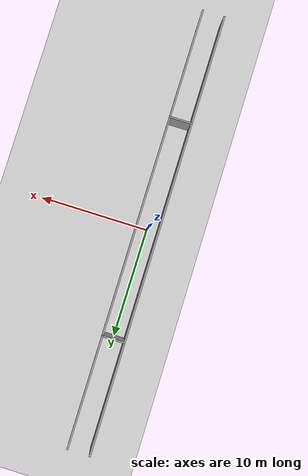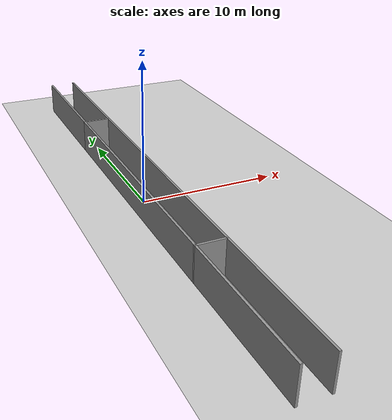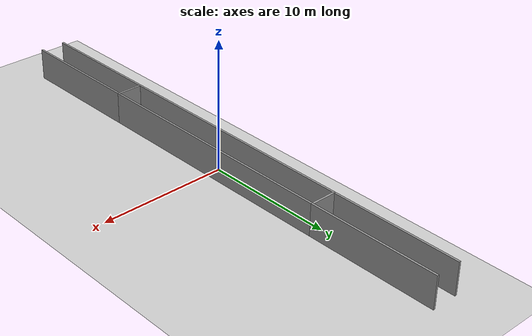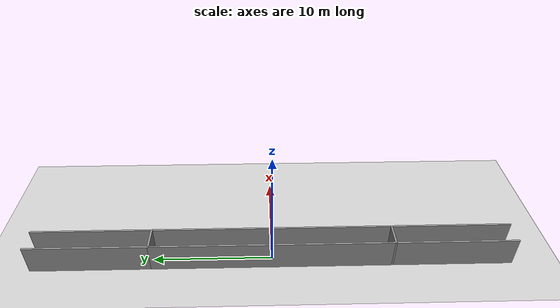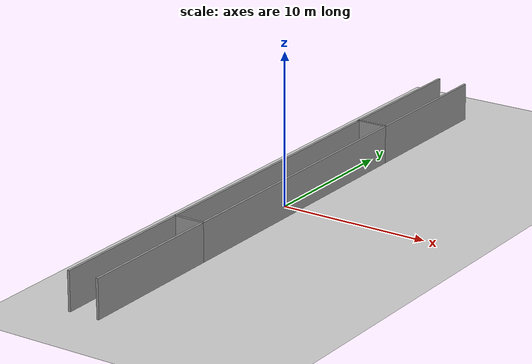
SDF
<sdf version="1.6">
 <world name="default">
  <light name="sun" type="directional">
   <pose>0 0 10 0 -0 0</pose>
   <diffuse>0.8 0.8 0.8 1</diffuse>
   <specular>0.1 0.1 0.1 1</specular>
   <attenuation>
    <range>1000</range>
    <constant>0.9</constant>
    <linear>0.01</linear>
    <quadratic>0.001</quadratic>
   </attenuation>
   <direction>-0.5 0.5 -1</direction>
  </light>
  <model name="ground_plane">
   <static>1</static>
   <link name="link">
    <collision name="collision">
     <geometry><plane><normal>0 0 1</normal><size>100 100</size></plane></geometry>
     <surface><friction><ode><mu>100</mu><mu2>50</mu2></ode></friction></surface>
    </collision>
    <visual name="visual">
     <cast_shadows>0</cast_shadows>
     <geometry><plane><normal>0 0 1</normal><size>100 100</size></plane></geometry>
     <material>
      <script><uri>file://media/materials/scripts/gazebo.material</uri><name>Gazebo/Grey</name></script>
     </material>
    </visual>
   </link>
  </model>
  <gravity>0 0 -9.8</gravity>
  <magnetic_field>6e-06 2.3e-05 -4.2e-05</magnetic_field>
  <atmosphere type="adiabatic"/>
  <physics name="default_physics" default="0" type="ode">
   <max_step_size>0.001</max_step_size>
   <real_time_factor>1</real_time_factor>
   <real_time_update_rate>1000</real_time_update_rate>
  </physics>
  <scene><ambient>0.4 0.4 0.4 1</ambient><background>0.7 0.7 0.7 1</background><shadows>1</shadows></scene>
  <spherical_coordinates>
   <surface_model>EARTH_WGS84</surface_model>
   <latitude_deg>0</latitude_deg>
   <longitude_deg>0</longitude_deg>
   <elevation>0</elevation>
   <heading_deg>0</heading_deg>
  </spherical_coordinates>
  <model name="Worst_Case_SLAM">
   <link name="Wall_2">
    <collision name="Wall_2_Collision">
     <geometry><box><size>20.15 0.15 2.5</size></box></geometry>
     <pose>0 0 1.25 0 -0 0</pose>
    </collision>
    <visual name="Wall_2_Visual">
     <pose>0 0 1.25 0 -0 0</pose>
     <geometry><box><size>20.15 0.15 2.5</size></box></geometry>
     <material>
      <script><uri>file://media/materials/scripts/gazebo.material</uri><name>Gazebo/Grey</name></script>
      <ambient>1 1 1 1</ambient>
     </material>
    </visual>
    <pose>-1 0 0 0 -0 1.5708</pose>
   </link>
   <link name="Wall_5">
    <collision name="Wall_5_Collision">
     <geometry><box><size>20.15 0.15 2.5</size></box></geometry>
     <pose>0 0 1.25 0 -0 0</pose>
    </collision>
    <visual name="Wall_5_Visual">
     <pose>0 0 1.25 0 -0 0</pose>
     <geometry><box><size>20.15 0.15 2.5</size></box></geometry>
     <material>
      <script><uri>file://media/materials/scripts/gazebo.material</uri><name>Gazebo/Grey</name></script>
      <ambient>1 1 1 1</ambient>
     </material>
    </visual>
    <pose>1 0 0 0 -0 1.5708</pose>
   </link>
   <link name="Worst_Case_SLAM::Wall_7">
    <collision name="Wall_7_Collision">
     <geometry><box><size>2.15 0.15 2.5</size></box></geometry>
     <pose>0 0 1.25 0 -0 0</pose>
    </collision>
    <visual name="Wall_7_Visual">
     <pose>0 0 1.25 0 -0 0</pose>
     <geometry><box><size>2.15 0.15 2.5</size></box></geometry>
     <material>
      <script><uri>file://media/materials/scripts/gazebo.material</uri><name>Gazebo/Grey</name></script>
      <ambient>1 1 1 1</ambient>
     </material>
    </visual>
    <pose>0 10 0 0 -0 0</pose>
   </link>
   <link name="Worst_Case_SLAM::Wall_9">
    <collision name="Wall_9_Collision">
     <geometry><box><size>2.15 0.15 2.5</size></box></geometry>
     <pose>0 0 1.25 0 -0 0</pose>
    </collision>
    <visual name="Wall_9_Visual">
     <pose>0 0 1.25 0 -0 0</pose>
     <geometry><box><size>2.15 0.15 2.5</size></box></geometry>
     <material>
      <script><uri>file://media/materials/scripts/gazebo.material</uri><name>Gazebo/Grey</name></script>
      <ambient>1 1 1 1</ambient>
     </material>
    </visual>
    <pose>0 -10 0 0 -0 0</pose>
   </link>
   <static>1</static>
  </model>
  <model name="Worst_Case_SLAM_0">
   <link name="Wall_0">
    <collision name="Wall_0_Collision">
     <geometry><box><size>10.15 0.15 2.5</size></box></geometry>
     <pose>0 0 1.25 0 -0 0</pose>
    </collision>
    <visual name="Wall_0_Visual">
     <pose>0 0 1.25 0 -0 0</pose>
     <geometry><box><size>10.15 0.15 2.5</size></box></geometry>
     <material>
      <script><uri>file://media/materials/scripts/gazebo.material</uri><name>Gazebo/Grey</name></script>
      <ambient>1 1 1 1</ambient>
     </material>
    </visual>
    <pose>-1 -15 0 0 0 -1.5708</pose>
   </link>
   <link name="Wall_16">
    <collision name="Wall_16_Collision">
     <geometry><box><size>10.15 0.15 2.5</size></box></geometry>
     <pose>0 0 1.25 0 -0 0</pose>
    </collision>
    <visual name="Wall_16_Visual">
     <pose>0 0 1.25 0 -0 0</pose>
     <geometry><box><size>10.15 0.15 2.5</size></box></geometry>
     <material>
      <script><uri>file://media/materials/scripts/gazebo.material</uri><name>Gazebo/Grey</name></script>
      <ambient>1 1 1 1</ambient>
     </material>
    </visual>
    <pose>-1 15 0 0 -0 1.5708</pose>
   </link>
   <link name="Wall_18">
    <collision name="Wall_18_Collision">
     <geometry><box><size>10.15 0.15 2.5</size></box></geometry>
     <pose>0 0 1.25 0 -0 0</pose>
    </collision>
    <visual name="Wall_18_Visual">
     <pose>0 0 1.25 0 -0 0</pose>
     <geometry><box><size>10.15 0.15 2.5</size></box></geometry>
     <material>
      <script><uri>file://media/materials/scripts/gazebo.material</uri><name>Gazebo/Grey</name></script>
      <ambient>1 1 1 1</ambient>
     </material>
    </visual>
    <pose>1 15 0 0 -0 1.5708</pose>
   </link>
   <link name="Wall_2">
    <collision name="Wall_2_Collision">
     <geometry><box><size>10.15 0.15 2.5</size></box></geometry>
     <pose>0 0 1.25 0 -0 0</pose>
    </collision>
    <visual name="Wall_2_Visual">
     <pose>0 0 1.25 0 -0 0</pose>
     <geometry><box><size>10.15 0.15 2.5</size></box></geometry>
     <material>
      <script><uri>file://media/materials/scripts/gazebo.material</uri><name>Gazebo/Grey</name></script>
      <ambient>1 1 1 1</ambient>
     </material>
    </visual>
    <pose>1 -15 0 0 0 -1.5708</pose>
   </link>
   <static>1</static>
  </model>
 </world>
</sdf>
